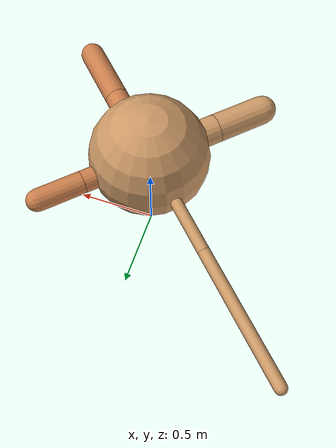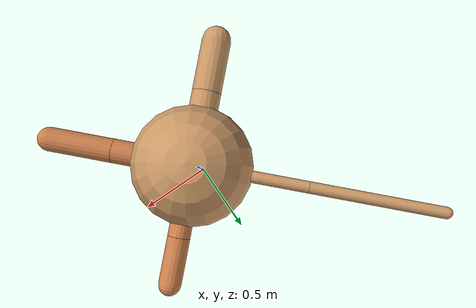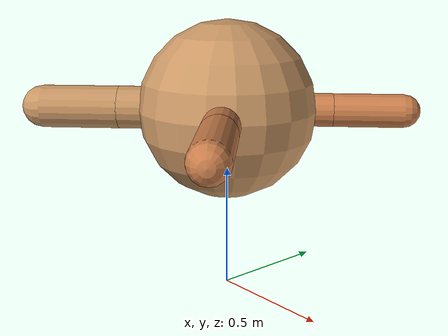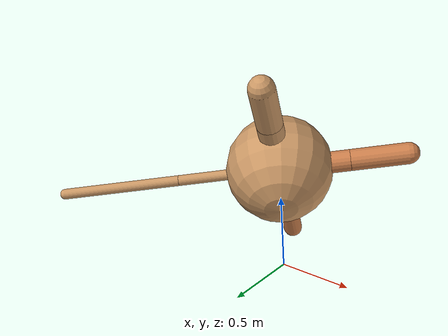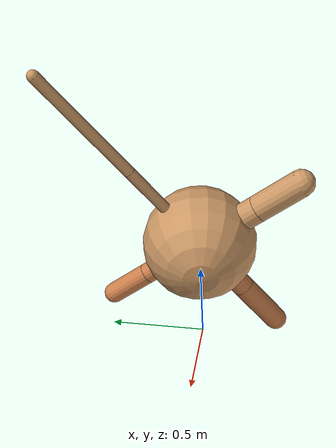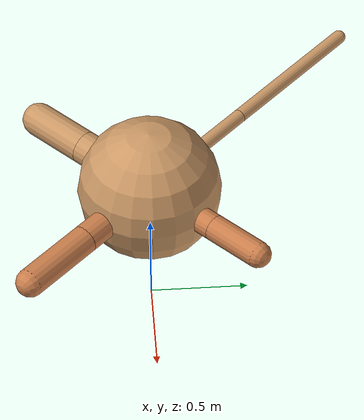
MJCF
<?xml version="1.0" ?>
<mujoco model="ant">

	<compiler angle="degree" coordinate="local" inertiafromgeom="true"/>

	<option integrator="RK4" timestep="0.01"/>

	<custom>

		<numeric data="0.0 0.0 0.55 1.0 0.0 0.0 0.0 0.0 1.0 0.0 -1.0 0.0 -1.0 0.0 1.0" name="init_qpos"/>

	</custom>

	<default>

		<joint armature="1" damping="1" limited="true"/>

		<geom conaffinity="0" condim="3" density="5.0" friction="1.5 0.1 0.1" margin="0.01" rgba="0.8 0.6 0.4 1"/>

	</default>

	<worldbody>

		<body name="torso" pos="0 0 0.75">

			<geom name="torso_geom" pos="0 0 0" size="0.35855477338377395" type="sphere"/>

			<!--joint armature="0" damping="0" limited="false" margin="0.01" name="root" pos="0 0 0" type="free"/-->

			<body name="front_left_leg" pos="0 0 0">

				<geom fromto="0 0 0 0.2 0.2 0" name="aux_1_geom" size="0.06627852341643595" type="capsule" rgba=".8 .5 .3 1"/>

				<body name="aux_1" pos="0.2 0.2 0">

					<joint axis="0 0 1" name="hip_1" pos="0.0 0.0 0.0" range="-40 40" type="hinge"/>

					<geom fromto="0 0 0 0.09790068927255394 0.09790068927255394 0" name="left_leg_geom" size="0.06627852341643595" type="capsule" rgba=".8 .5 .3 1"/>

					<body pos="0.09790068927255394 0.09790068927255394 0" name="front_left_foot">

						<joint axis="-1 1 0" name="ankle_1" pos="0.0 0.0 0.0" range="30 100" type="hinge"/>

						<geom fromto="0 0 0 0.19580137854510787 0.19580137854510787 0" name="left_ankle_geom" size="0.06627852341643595" type="capsule" rgba=".8 .5 .3 1"/>

					</body>

				</body>

			</body>

			<body name="front_right_leg" pos="0 0 0">

				<geom fromto="0 0 0 -0.2 0.2 0" name="aux_2_geom" size="0.035866938253820806" type="capsule"/>

				<body name="aux_2" pos="-0.2 0.2 0">

					<joint axis="0 0 1" name="hip_2" pos="0.0 0.0 0.0" range="-40 40" type="hinge"/>

					<geom fromto="0 0 0 -0.2885064299370523 0.2885064299370523 0" name="right_leg_geom" size="0.035866938253820806" type="capsule"/>

					<body pos="-0.2885064299370523 0.2885064299370523 0" name="front_right_foot">

						<joint axis="1 1 0" name="ankle_2" pos="0.0 0.0 0.0" range="-100 -30" type="hinge"/>

						<geom fromto="0 0 0 -0.5770128598741046 0.5770128598741046 0" name="right_ankle_geom" size="0.035866938253820806" type="capsule"/>

					</body>

				</body>

			</body>

			<body name="left_back_leg" pos="0 0 0">

				<geom fromto="0 0 0 -0.2 -0.2 0" name="aux_3_geom" size="0.08623205335035924" type="capsule"/>

				<body name="aux_3" pos="-0.2 -0.2 0">

					<joint axis="0 0 1" name="hip_3" pos="0.0 0.0 0.0" range="-40 40" type="hinge"/>

					<geom fromto="0 0 0 -0.11098409716683305 -0.11098409716683305 0" name="back_leg_geom" size="0.08623205335035924" type="capsule"/>

					<body pos="-0.11098409716683305 -0.11098409716683305 0" name="left_back_foot">

						<joint axis="-1 1 0" name="ankle_3" pos="0.0 0.0 0.0" range="-100 -30" type="hinge"/>

						<geom fromto="0 0 0 -0.2219681943336661 -0.2219681943336661 0" name="third_ankle_geom" size="0.08623205335035924" type="capsule"/>

					</body>

				</body>

			</body>

			<body name="right_back_leg" pos="0 0 0">

				<geom fromto="0 0 0 0.2 -0.2 0" name="aux_4_geom" size="0.07191076582773029" type="capsule" rgba=".8 .5 .3 1"/>

				<body name="aux_4" pos="0.2 -0.2 0">

					<joint axis="0 0 1" name="hip_4" pos="0.0 0.0 0.0" range="-40 40" type="hinge"/>

					<geom fromto="0 0 0 0.13391657870397564 -0.13391657870397564 0" name="rightback_leg_geom" size="0.07191076582773029" type="capsule" rgba=".8 .5 .3 1"/>

					<body pos="0.13391657870397564 -0.13391657870397564 0" name="right_back_foot">

						<joint axis="1 1 0" name="ankle_4" pos="0.0 0.0 0.0" range="30 100" type="hinge"/>

						<geom fromto="0 0 0 0.26783315740795127 -0.26783315740795127 0" name="fourth_ankle_geom" size="0.07191076582773029" type="capsule" rgba=".8 .5 .3 1"/>

					</body>

				</body>

			</body>

		</body>

	</worldbody>

	<actuator>

		<motor ctrllimited="true" ctrlrange="-1.0 1.0" joint="hip_4" gear="150"/>

		<motor ctrllimited="true" ctrlrange="-1.0 1.0" joint="ankle_4" gear="150"/>

		<motor ctrllimited="true" ctrlrange="-1.0 1.0" joint="hip_1" gear="150"/>

		<motor ctrllimited="true" ctrlrange="-1.0 1.0" joint="ankle_1" gear="150"/>

		<motor ctrllimited="true" ctrlrange="-1.0 1.0" joint="hip_2" gear="150"/>

		<motor ctrllimited="true" ctrlrange="-1.0 1.0" joint="ankle_2" gear="150"/>

		<motor ctrllimited="true" ctrlrange="-1.0 1.0" joint="hip_3" gear="150"/>

		<motor ctrllimited="true" ctrlrange="-1.0 1.0" joint="ankle_3" gear="150"/>

	</actuator>

</mujoco>
